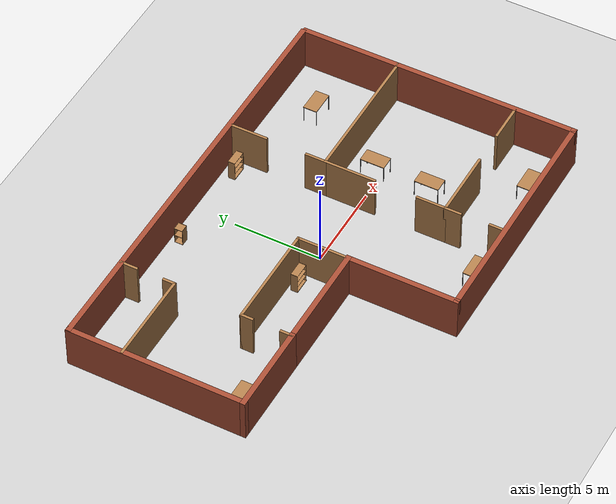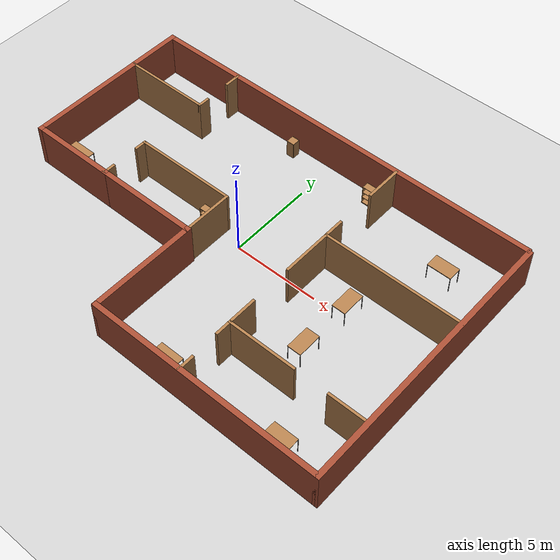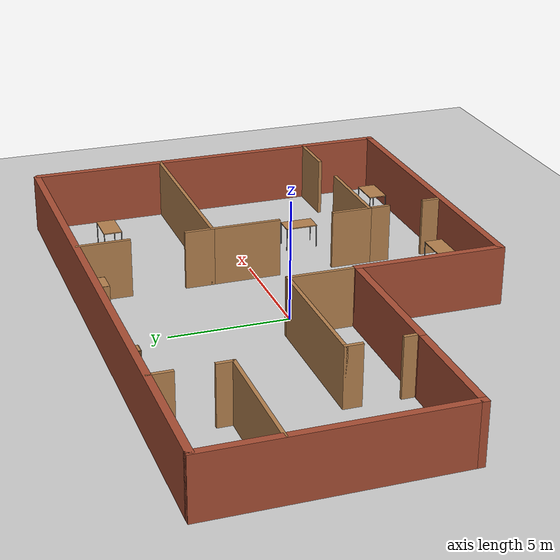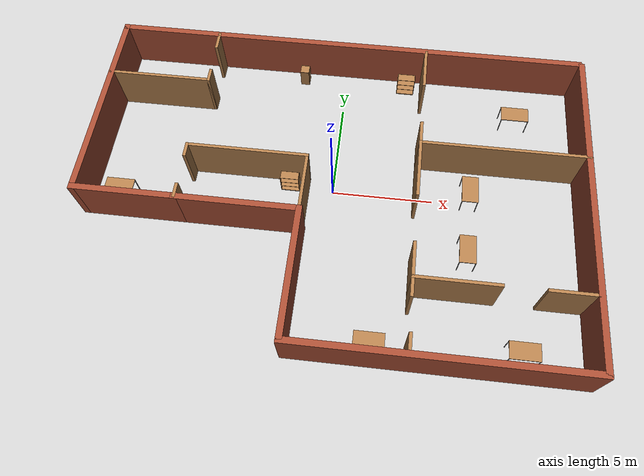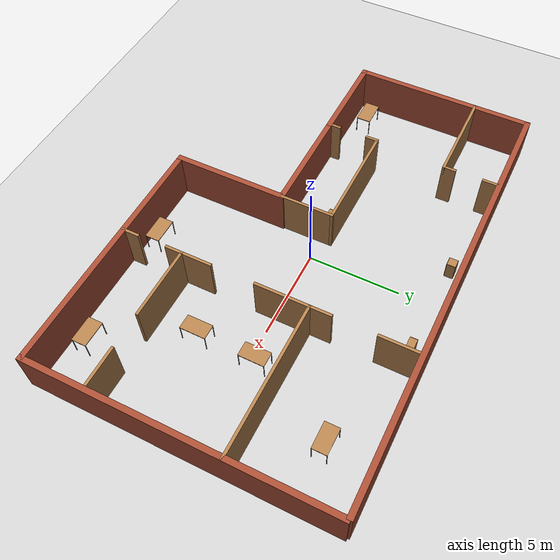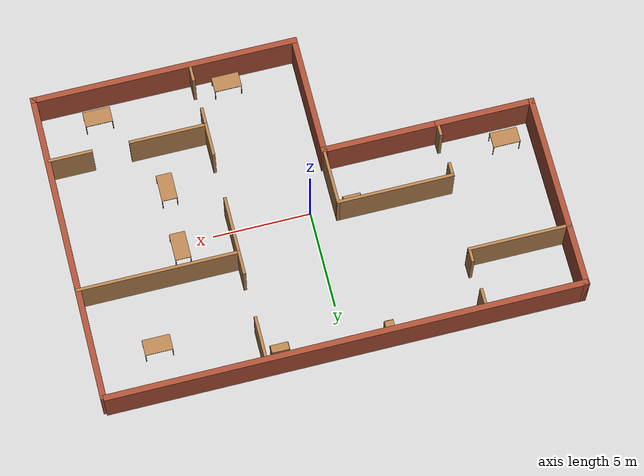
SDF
<sdf version="1.6">
 <world name="default">
  <model name="ground_plane">
   <static>1</static>
   <link name="link">
    <collision name="collision">
     <geometry><plane><normal>0 0 1</normal><size>100 100</size></plane></geometry>
     <surface><friction><ode><mu>100</mu><mu2>50</mu2></ode></friction></surface>
    </collision>
    <visual name="visual">
     <cast_shadows>0</cast_shadows>
     <geometry><plane><normal>0 0 1</normal><size>100 100</size></plane></geometry>
     <material>
      <script><uri>file://media/materials/scripts/gazebo.material</uri><name>Gazebo/Grey</name></script>
     </material>
    </visual>
   </link>
  </model>
  <model name="Building">
   <pose>0.09661 -0.39865 0 0 -0 0</pose>
   <link name="Wall_0">
    <collision name="Wall_0_Collision">
     <geometry><box><size>6.15 0.3 2.5</size></box></geometry>
     <pose>0 0 1.25 0 -0 0</pose>
    </collision>
    <visual name="Wall_0_Visual">
     <pose>0 0 1.25 0 -0 0</pose>
     <geometry><box><size>6.15 0.3 2.5</size></box></geometry>
     <material>
      <script><uri>file://media/materials/scripts/gazebo.material</uri><name>Gazebo/Bricks</name></script>
      <ambient>1 1 1 1</ambient>
     </material>
    </visual>
    <pose>-4.2905 -1.875 0 0 -0 0</pose>
   </link>
   <link name="Wall_1">
    <collision name="Wall_1_Collision">
     <geometry><box><size>3 0.15 2.5</size></box></geometry>
     <pose>0 0 1.25 0 -0 0</pose>
    </collision>
    <visual name="Wall_1_Visual">
     <pose>0 0 1.25 0 -0 0</pose>
     <geometry><box><size>3 0.15 2.5</size></box></geometry>
     <material>
      <script><uri>file://media/materials/scripts/gazebo.material</uri><name>Gazebo/Wood</name></script>
      <ambient>1 1 1 1</ambient>
     </material>
    </visual>
    <pose>-1.3655 -0.45 0 0 -0 1.5708</pose>
   </link>
   <link name="Wall_10">
    <collision name="Wall_10_Collision">
     <geometry><box><size>24.25 0.3 2.5</size></box></geometry>
     <pose>0 0 1.25 0 -0 0</pose>
    </collision>
    <visual name="Wall_10_Visual">
     <pose>0 0 1.25 0 -0 0</pose>
     <geometry><box><size>24.25 0.3 2.5</size></box></geometry>
     <material>
      <script><uri>file://media/materials/scripts/gazebo.material</uri><name>Gazebo/Bricks</name></script>
      <ambient>1 1 1 1</ambient>
     </material>
    </visual>
    <pose>-0.051365 7.975 0 0 -0 0</pose>
   </link>
   <link name="Wall_15">
    <collision name="Wall_15_Collision">
     <geometry><box><size>5.25 0.15 2.5</size></box></geometry>
     <pose>0 0 1.25 0 -0 0</pose>
    </collision>
    <visual name="Wall_15_Visual">
     <pose>0 0 1.25 0 -0 0</pose>
     <geometry><box><size>5.25 0.15 2.5</size></box></geometry>
     <material>
      <script><uri>file://media/materials/scripts/gazebo.material</uri><name>Gazebo/Wood</name></script>
      <ambient>1 1 1 1</ambient>
     </material>
    </visual>
    <pose>-9.54678 4.92232 0 0 -0 0</pose>
   </link>
   <link name="Wall_17">
    <collision name="Wall_17_Collision">
     <geometry><box><size>0.75 0.15 2.5</size></box></geometry>
     <pose>0 0 1.25 0 -0 0</pose>
    </collision>
    <visual name="Wall_17_Visual">
     <pose>0 0 1.25 0 -0 0</pose>
     <geometry><box><size>0.75 0.15 2.5</size></box></geometry>
     <material>
      <script><uri>file://media/materials/scripts/gazebo.material</uri><name>Gazebo/Wood</name></script>
      <ambient>1 1 1 1</ambient>
     </material>
    </visual>
    <pose>-6.99678 5.22232 0 0 -0 1.5708</pose>
   </link>
   <link name="Wall_2">
    <collision name="Wall_2_Collision">
     <geometry><box><size>6 0.15 2.5</size></box></geometry>
     <pose>0 0 1.25 0 -0 0</pose>
    </collision>
    <visual name="Wall_2_Visual">
     <pose>0 0 1.25 0 -0 0</pose>
     <geometry><box><size>6 0.15 2.5</size></box></geometry>
     <material>
      <script><uri>file://media/materials/scripts/gazebo.material</uri><name>Gazebo/Wood</name></script>
      <ambient>1 1 1 1</ambient>
     </material>
    </visual>
    <pose>-4.2905 0.975 0 0 -0 3.14159</pose>
   </link>
   <link name="Wall_20">
    <collision name="Wall_20_Collision">
     <geometry><box><size>1 0.15 2.5</size></box></geometry>
     <pose>0 0 1.25 0 -0 0</pose>
    </collision>
    <visual name="Wall_20_Visual">
     <pose>0 0 1.25 0 -0 0</pose>
     <geometry><box><size>1 0.15 2.5</size></box></geometry>
     <material>
      <script><uri>file://media/materials/scripts/gazebo.material</uri><name>Gazebo/Wood</name></script>
      <ambient>1 1 1 1</ambient>
     </material>
    </visual>
    <pose>-7.0138 7.53363 0 0 0 -1.5708</pose>
   </link>
   <link name="Wall_22">
    <collision name="Wall_22_Collision">
     <geometry><box><size>6.4 0.3 2.5</size></box></geometry>
     <pose>0 0 1.25 0 -0 0</pose>
    </collision>
    <visual name="Wall_22_Visual">
     <pose>0 0 1.25 0 -0 0</pose>
     <geometry><box><size>6.4 0.3 2.5</size></box></geometry>
     <material>
      <script><uri>file://media/materials/scripts/gazebo.material</uri><name>Gazebo/Bricks</name></script>
      <ambient>1 1 1 1</ambient>
     </material>
    </visual>
    <pose>-1.3655 -4.925 0 0 0 -1.5708</pose>
   </link>
   <link name="Wall_23">
    <collision name="Wall_23_Collision">
     <geometry><box><size>13.731 0.3 2.5</size></box></geometry>
     <pose>0 0 1.25 0 -0 0</pose>
    </collision>
    <visual name="Wall_23_Visual">
     <pose>0 0 1.25 0 -0 0</pose>
     <geometry><box><size>13.731 0.3 2.5</size></box></geometry>
     <material>
      <script><uri>file://media/materials/scripts/gazebo.material</uri><name>Gazebo/Bricks</name></script>
      <ambient>1 1 1 1</ambient>
     </material>
    </visual>
    <pose>5.35 -7.975 0 0 -0 0</pose>
   </link>
   <link name="Wall_24">
    <collision name="Wall_24_Collision">
     <geometry><box><size>16.15 0.3 2.5</size></box></geometry>
     <pose>0 0 1.25 0 -0 0</pose>
    </collision>
    <visual name="Wall_24_Visual">
     <pose>0 0 1.25 0 -0 0</pose>
     <geometry><box><size>16.15 0.3 2.5</size></box></geometry>
     <material>
      <script><uri>file://media/materials/scripts/gazebo.material</uri><name>Gazebo/Bricks</name></script>
      <ambient>1 1 1 1</ambient>
     </material>
    </visual>
    <pose>12.0655 -0.05 0 0 -0 1.5708</pose>
   </link>
   <link name="Wall_26">
    <collision name="Wall_26_Collision">
     <geometry><box><size>10.15 0.3 2.5</size></box></geometry>
     <pose>0 0 1.25 0 -0 0</pose>
    </collision>
    <visual name="Wall_26_Visual">
     <pose>0 0 1.25 0 -0 0</pose>
     <geometry><box><size>10.15 0.3 2.5</size></box></geometry>
     <material>
      <script><uri>file://media/materials/scripts/gazebo.material</uri><name>Gazebo/Bricks</name></script>
      <ambient>1 1 1 1</ambient>
     </material>
    </visual>
    <pose>-12.0655 3.05 0 0 -0 1.5708</pose>
   </link>
   <link name="Wall_29">
    <collision name="Wall_29_Collision">
     <geometry><box><size>2.25 0.15 2.5</size></box></geometry>
     <pose>0 0 1.25 0 -0 0</pose>
    </collision>
    <visual name="Wall_29_Visual">
     <pose>0 0 1.25 0 -0 0</pose>
     <geometry><box><size>2.25 0.15 2.5</size></box></geometry>
     <material>
      <script><uri>file://media/materials/scripts/gazebo.material</uri><name>Gazebo/Wood</name></script>
      <ambient>1 1 1 1</ambient>
     </material>
    </visual>
    <pose>4.00585 6.87362 0 0 0 -1.5708</pose>
   </link>
   <link name="Wall_3">
    <collision name="Wall_3_Collision">
     <geometry><box><size>0.75 0.15 2.5</size></box></geometry>
     <pose>0 0 1.25 0 -0 0</pose>
    </collision>
    <visual name="Wall_3_Visual">
     <pose>0 0 1.25 0 -0 0</pose>
     <geometry><box><size>0.75 0.15 2.5</size></box></geometry>
     <material>
      <script><uri>file://media/materials/scripts/gazebo.material</uri><name>Gazebo/Wood</name></script>
      <ambient>1 1 1 1</ambient>
     </material>
    </visual>
    <pose>-7.2155 0.675 0 0 0 -1.5708</pose>
   </link>
   <link name="Wall_34">
    <collision name="Wall_34_Collision">
     <geometry><box><size>1.25 0.15 2.5</size></box></geometry>
     <pose>0 0 1.25 0 -0 0</pose>
    </collision>
    <visual name="Wall_34_Visual">
     <pose>0 0 1.25 0 -0 0</pose>
     <geometry><box><size>1.25 0.15 2.5</size></box></geometry>
     <material>
      <script><uri>file://media/materials/scripts/gazebo.material</uri><name>Gazebo/Wood</name></script>
      <ambient>1 1 1 1</ambient>
     </material>
    </visual>
    <pose>3.99805 2.86928 0 0 0 -1.5708</pose>
   </link>
   <link name="Wall_35">
    <collision name="Wall_35_Collision">
     <geometry><box><size>8.25 0.15 2.5</size></box></geometry>
     <pose>0 0 1.25 0 -0 0</pose>
    </collision>
    <visual name="Wall_35_Visual">
     <pose>0 0 1.25 0 -0 0</pose>
     <geometry><box><size>8.25 0.15 2.5</size></box></geometry>
     <material>
      <script><uri>file://media/materials/scripts/gazebo.material</uri><name>Gazebo/Wood</name></script>
      <ambient>1 1 1 1</ambient>
     </material>
    </visual>
    <pose>8.04805 2.31928 0 0 -0 0</pose>
   </link>
   <link name="Wall_38">
    <collision name="Wall_38_Collision">
     <geometry><box><size>3 0.15 2.5</size></box></geometry>
     <pose>0 0 1.25 0 -0 0</pose>
    </collision>
    <visual name="Wall_38_Visual">
     <pose>0 0 1.25 0 -0 0</pose>
     <geometry><box><size>3 0.15 2.5</size></box></geometry>
     <material>
      <script><uri>file://media/materials/scripts/gazebo.material</uri><name>Gazebo/Wood</name></script>
      <ambient>1 1 1 1</ambient>
     </material>
    </visual>
    <pose>3.99805 0.894284 0 0 0 -1.5708</pose>
   </link>
   <link name="Wall_40">
    <collision name="Wall_40_Collision">
     <geometry><box><size>1.75 0.15 2.5</size></box></geometry>
     <pose>0 0 1.25 0 -0 0</pose>
    </collision>
    <visual name="Wall_40_Visual">
     <pose>0 0 1.25 0 -0 0</pose>
     <geometry><box><size>1.75 0.15 2.5</size></box></geometry>
     <material>
      <script><uri>file://media/materials/scripts/gazebo.material</uri><name>Gazebo/Wood</name></script>
      <ambient>1 1 1 1</ambient>
     </material>
    </visual>
    <pose>4.00066 -3.81284 0 0 0 -1.5708</pose>
   </link>
   <link name="Wall_44">
    <collision name="Wall_44_Collision">
     <geometry><box><size>1 0.15 2.5</size></box></geometry>
     <pose>0 0 1.25 0 -0 0</pose>
    </collision>
    <visual name="Wall_44_Visual">
     <pose>0 0 1.25 0 -0 0</pose>
     <geometry><box><size>1 0.15 2.5</size></box></geometry>
     <material>
      <script><uri>file://media/materials/scripts/gazebo.material</uri><name>Gazebo/Wood</name></script>
      <ambient>1 1 1 1</ambient>
     </material>
    </visual>
    <pose>4.00066 -5.03784 0 0 0 -1.5708</pose>
   </link>
   <link name="Wall_46">
    <collision name="Wall_46_Collision">
     <geometry><box><size>1 0.15 2.5</size></box></geometry>
     <pose>0 0 1.25 0 -0 0</pose>
    </collision>
    <visual name="Wall_46_Visual">
     <pose>0 0 1.25 0 -0 0</pose>
     <geometry><box><size>1 0.15 2.5</size></box></geometry>
     <material>
      <script><uri>file://media/materials/scripts/gazebo.material</uri><name>Gazebo/Wood</name></script>
      <ambient>1 1 1 1</ambient>
     </material>
    </visual>
    <pose>4.04354 -7.56511 0 0 -0 1.5708</pose>
   </link>
   <link name="Wall_48">
    <collision name="Wall_48_Collision">
     <geometry><box><size>4 0.15 2.5</size></box></geometry>
     <pose>0 0 1.25 0 -0 0</pose>
    </collision>
    <visual name="Wall_48_Visual">
     <pose>0 0 1.25 0 -0 0</pose>
     <geometry><box><size>4 0.15 2.5</size></box></geometry>
     <material>
      <script><uri>file://media/materials/scripts/gazebo.material</uri><name>Gazebo/Wood</name></script>
      <ambient>1 1 1 1</ambient>
     </material>
    </visual>
    <pose>5.92566 -4.61284 0 0 -0 0</pose>
   </link>
   <link name="Wall_5">
    <collision name="Wall_5_Collision">
     <geometry><box><size>0.75 0.15 2.5</size></box></geometry>
     <pose>0 0 1.25 0 -0 0</pose>
    </collision>
    <visual name="Wall_5_Visual">
     <pose>0 0 1.25 0 -0 0</pose>
     <geometry><box><size>0.75 0.15 2.5</size></box></geometry>
     <material>
      <script><uri>file://media/materials/scripts/gazebo.material</uri><name>Gazebo/Wood</name></script>
      <ambient>1 1 1 1</ambient>
     </material>
    </visual>
    <pose>-7.2155 -1.575 0 0 -0 1.5708</pose>
   </link>
   <link name="Wall_50">
    <collision name="Wall_50_Collision">
     <geometry><box><size>2.25 0.15 2.5</size></box></geometry>
     <pose>0 0 1.25 0 -0 0</pose>
    </collision>
    <visual name="Wall_50_Visual">
     <pose>0 0 1.25 0 -0 0</pose>
     <geometry><box><size>2.25 0.15 2.5</size></box></geometry>
     <material>
      <script><uri>file://media/materials/scripts/gazebo.material</uri><name>Gazebo/Wood</name></script>
      <ambient>1 1 1 1</ambient>
     </material>
    </visual>
    <pose>10.9177 -4.61728 0 0 -0 0</pose>
   </link>
   <link name="Wall_7">
    <collision name="Wall_7_Collision">
     <geometry><box><size>5.15 0.3 2.5</size></box></geometry>
     <pose>0 0 1.25 0 -0 0</pose>
    </collision>
    <visual name="Wall_7_Visual">
     <pose>0 0 1.25 0 -0 0</pose>
     <geometry><box><size>5.15 0.3 2.5</size></box></geometry>
     <material>
      <script><uri>file://media/materials/scripts/gazebo.material</uri><name>Gazebo/Bricks</name></script>
      <ambient>1 1 1 1</ambient>
     </material>
    </visual>
    <pose>-9.6405 -1.875 0 0 -0 3.14159</pose>
   </link>
   <static>1</static>
  </model>
  <model name="table_0">
   <static>0</static>
   <link name="link">
    <collision name="surface">
     <pose>0 0 1 0 -0 0</pose>
     <geometry><box><size>1.5 0.8 0.03</size></box></geometry>
     <surface><friction><ode><mu>0.6</mu><mu2>0.6</mu2></ode></friction></surface>
    </collision>
    <visual name="visual1">
     <pose>0 0 1 0 -0 0</pose>
     <geometry><box><size>1.4 0.8 0.04</size></box></geometry>
     <material>
      <script><uri>file://media/materials/scripts/gazebo.material</uri><name>Gazebo/Wood</name></script>
     </material>
    </visual>
    <collision name="front_left_leg">
     <pose>0.68 0.38 0.5 0 -0 0</pose>
     <geometry><cylinder><radius>0.02</radius><length>1</length></cylinder></geometry>
    </collision>
    <visual name="front_left_leg">
     <pose>0.68 0.38 0.5 0 -0 0</pose>
     <geometry><cylinder><radius>0.02</radius><length>1</length></cylinder></geometry>
     <material>
      <script><uri>file://media/materials/scripts/gazebo.material</uri><name>Gazebo/Grey</name></script>
     </material>
    </visual>
    <collision name="front_right_leg">
     <pose>0.68 -0.38 0.5 0 -0 0</pose>
     <geometry><cylinder><radius>0.02</radius><length>1</length></cylinder></geometry>
    </collision>
    <visual name="front_right_leg">
     <pose>0.68 -0.38 0.5 0 -0 0</pose>
     <geometry><cylinder><radius>0.02</radius><length>1</length></cylinder></geometry>
     <material>
      <script><uri>file://media/materials/scripts/gazebo.material</uri><name>Gazebo/Grey</name></script>
     </material>
    </visual>
    <collision name="back_right_leg">
     <pose>-0.68 -0.38 0.5 0 -0 0</pose>
     <geometry><cylinder><radius>0.02</radius><length>1</length></cylinder></geometry>
    </collision>
    <visual name="back_right_leg">
     <pose>-0.68 -0.38 0.5 0 -0 0</pose>
     <geometry><cylinder><radius>0.02</radius><length>1</length></cylinder></geometry>
     <material>
      <script><uri>file://media/materials/scripts/gazebo.material</uri><name>Gazebo/Grey</name></script>
     </material>
    </visual>
    <collision name="back_left_leg">
     <pose>-0.68 0.38 0.5 0 -0 0</pose>
     <geometry><cylinder><radius>0.02</radius><length>1</length></cylinder></geometry>
    </collision>
    <visual name="back_left_leg">
     <pose>-0.68 0.38 0.5 0 -0 0</pose>
     <geometry><cylinder><radius>0.02</radius><length>1</length></cylinder></geometry>
     <material>
      <script><uri>file://media/materials/scripts/gazebo.material</uri><name>Gazebo/Grey</name></script>
     </material>
    </visual>
    <inertial>
     <inertia><ixx>1</ixx><ixy>0</ixy><ixz>0</ixz><iyy>1</iyy><iyz>0</iyz><izz>1</izz></inertia>
     <mass>1</mass>
    </inertial>
   </link>
   <pose>9.00297 5.12195 -9e-06 0 -1e-06 0</pose>
  </model>
  <model name="table_1">
   <static>0</static>
   <link name="link">
    <collision name="surface">
     <pose>0 0 1 0 -0 0</pose>
     <geometry><box><size>1.5 0.8 0.03</size></box></geometry>
     <surface><friction><ode><mu>0.6</mu><mu2>0.6</mu2></ode></friction></surface>
    </collision>
    <visual name="visual1">
     <pose>0 0 1 0 -0 0</pose>
     <geometry><box><size>1.4 0.8 0.04</size></box></geometry>
     <material>
      <script><uri>file://media/materials/scripts/gazebo.material</uri><name>Gazebo/Wood</name></script>
     </material>
    </visual>
    <collision name="front_left_leg">
     <pose>0.68 0.38 0.5 0 -0 0</pose>
     <geometry><cylinder><radius>0.02</radius><length>1</length></cylinder></geometry>
    </collision>
    <visual name="front_left_leg">
     <pose>0.68 0.38 0.5 0 -0 0</pose>
     <geometry><cylinder><radius>0.02</radius><length>1</length></cylinder></geometry>
     <material>
      <script><uri>file://media/materials/scripts/gazebo.material</uri><name>Gazebo/Grey</name></script>
     </material>
    </visual>
    <collision name="front_right_leg">
     <pose>0.68 -0.38 0.5 0 -0 0</pose>
     <geometry><cylinder><radius>0.02</radius><length>1</length></cylinder></geometry>
    </collision>
    <visual name="front_right_leg">
     <pose>0.68 -0.38 0.5 0 -0 0</pose>
     <geometry><cylinder><radius>0.02</radius><length>1</length></cylinder></geometry>
     <material>
      <script><uri>file://media/materials/scripts/gazebo.material</uri><name>Gazebo/Grey</name></script>
     </material>
    </visual>
    <collision name="back_right_leg">
     <pose>-0.68 -0.38 0.5 0 -0 0</pose>
     <geometry><cylinder><radius>0.02</radius><length>1</length></cylinder></geometry>
    </collision>
    <visual name="back_right_leg">
     <pose>-0.68 -0.38 0.5 0 -0 0</pose>
     <geometry><cylinder><radius>0.02</radius><length>1</length></cylinder></geometry>
     <material>
      <script><uri>file://media/materials/scripts/gazebo.material</uri><name>Gazebo/Grey</name></script>
     </material>
    </visual>
    <collision name="back_left_leg">
     <pose>-0.68 0.38 0.5 0 -0 0</pose>
     <geometry><cylinder><radius>0.02</radius><length>1</length></cylinder></geometry>
    </collision>
    <visual name="back_left_leg">
     <pose>-0.68 0.38 0.5 0 -0 0</pose>
     <geometry><cylinder><radius>0.02</radius><length>1</length></cylinder></geometry>
     <material>
      <script><uri>file://media/materials/scripts/gazebo.material</uri><name>Gazebo/Grey</name></script>
     </material>
    </visual>
    <inertial>
     <inertia><ixx>1</ixx><ixy>0</ixy><ixz>0</ixz><iyy>1</iyy><iyz>0</iyz><izz>1</izz></inertia>
     <mass>1</mass>
    </inertial>
   </link>
   <pose>6.75225 0.384972 -8e-06 0 -0 1.57157</pose>
  </model>
  <model name="table_1_clone">
   <static>0</static>
   <link name="link">
    <collision name="surface">
     <pose>0 0 1 0 -0 0</pose>
     <geometry><box><size>1.5 0.8 0.03</size></box></geometry>
     <surface><friction><ode><mu>0.6</mu><mu2>0.6</mu2></ode></friction></surface>
    </collision>
    <visual name="visual1">
     <pose>0 0 1 0 -0 0</pose>
     <geometry><box><size>1.4 0.8 0.04</size></box></geometry>
     <material>
      <script><uri>file://media/materials/scripts/gazebo.material</uri><name>Gazebo/Wood</name></script>
     </material>
    </visual>
    <collision name="front_left_leg">
     <pose>0.68 0.38 0.5 0 -0 0</pose>
     <geometry><cylinder><radius>0.02</radius><length>1</length></cylinder></geometry>
    </collision>
    <visual name="front_left_leg">
     <pose>0.68 0.38 0.5 0 -0 0</pose>
     <geometry><cylinder><radius>0.02</radius><length>1</length></cylinder></geometry>
     <material>
      <script><uri>file://media/materials/scripts/gazebo.material</uri><name>Gazebo/Grey</name></script>
     </material>
    </visual>
    <collision name="front_right_leg">
     <pose>0.68 -0.38 0.5 0 -0 0</pose>
     <geometry><cylinder><radius>0.02</radius><length>1</length></cylinder></geometry>
    </collision>
    <visual name="front_right_leg">
     <pose>0.68 -0.38 0.5 0 -0 0</pose>
     <geometry><cylinder><radius>0.02</radius><length>1</length></cylinder></geometry>
     <material>
      <script><uri>file://media/materials/scripts/gazebo.material</uri><name>Gazebo/Grey</name></script>
     </material>
    </visual>
    <collision name="back_right_leg">
     <pose>-0.68 -0.38 0.5 0 -0 0</pose>
     <geometry><cylinder><radius>0.02</radius><length>1</length></cylinder></geometry>
    </collision>
    <visual name="back_right_leg">
     <pose>-0.68 -0.38 0.5 0 -0 0</pose>
     <geometry><cylinder><radius>0.02</radius><length>1</length></cylinder></geometry>
     <material>
      <script><uri>file://media/materials/scripts/gazebo.material</uri><name>Gazebo/Grey</name></script>
     </material>
    </visual>
    <collision name="back_left_leg">
     <pose>-0.68 0.38 0.5 0 -0 0</pose>
     <geometry><cylinder><radius>0.02</radius><length>1</length></cylinder></geometry>
    </collision>
    <visual name="back_left_leg">
     <pose>-0.68 0.38 0.5 0 -0 0</pose>
     <geometry><cylinder><radius>0.02</radius><length>1</length></cylinder></geometry>
     <material>
      <script><uri>file://media/materials/scripts/gazebo.material</uri><name>Gazebo/Grey</name></script>
     </material>
    </visual>
    <inertial>
     <inertia><ixx>1</ixx><ixy>0</ixy><ixz>0</ixz><iyy>1</iyy><iyz>0</iyz><izz>1</izz></inertia>
     <mass>1</mass>
    </inertial>
   </link>
   <pose>6.69104 -2.81314 -8e-06 0 -0 1.57157</pose>
  </model>
  <model name="table_2">
   <static>0</static>
   <link name="link">
    <collision name="surface">
     <pose>0 0 1 0 -0 0</pose>
     <geometry><box><size>1.5 0.8 0.03</size></box></geometry>
     <surface><friction><ode><mu>0.6</mu><mu2>0.6</mu2></ode></friction></surface>
    </collision>
    <visual name="visual1">
     <pose>0 0 1 0 -0 0</pose>
     <geometry><box><size>1.4 0.8 0.04</size></box></geometry>
     <material>
      <script><uri>file://media/materials/scripts/gazebo.material</uri><name>Gazebo/Wood</name></script>
     </material>
    </visual>
    <collision name="front_left_leg">
     <pose>0.68 0.38 0.5 0 -0 0</pose>
     <geometry><cylinder><radius>0.02</radius><length>1</length></cylinder></geometry>
    </collision>
    <visual name="front_left_leg">
     <pose>0.68 0.38 0.5 0 -0 0</pose>
     <geometry><cylinder><radius>0.02</radius><length>1</length></cylinder></geometry>
     <material>
      <script><uri>file://media/materials/scripts/gazebo.material</uri><name>Gazebo/Grey</name></script>
     </material>
    </visual>
    <collision name="front_right_leg">
     <pose>0.68 -0.38 0.5 0 -0 0</pose>
     <geometry><cylinder><radius>0.02</radius><length>1</length></cylinder></geometry>
    </collision>
    <visual name="front_right_leg">
     <pose>0.68 -0.38 0.5 0 -0 0</pose>
     <geometry><cylinder><radius>0.02</radius><length>1</length></cylinder></geometry>
     <material>
      <script><uri>file://media/materials/scripts/gazebo.material</uri><name>Gazebo/Grey</name></script>
     </material>
    </visual>
    <collision name="back_right_leg">
     <pose>-0.68 -0.38 0.5 0 -0 0</pose>
     <geometry><cylinder><radius>0.02</radius><length>1</length></cylinder></geometry>
    </collision>
    <visual name="back_right_leg">
     <pose>-0.68 -0.38 0.5 0 -0 0</pose>
     <geometry><cylinder><radius>0.02</radius><length>1</length></cylinder></geometry>
     <material>
      <script><uri>file://media/materials/scripts/gazebo.material</uri><name>Gazebo/Grey</name></script>
     </material>
    </visual>
    <collision name="back_left_leg">
     <pose>-0.68 0.38 0.5 0 -0 0</pose>
     <geometry><cylinder><radius>0.02</radius><length>1</length></cylinder></geometry>
    </collision>
    <visual name="back_left_leg">
     <pose>-0.68 0.38 0.5 0 -0 0</pose>
     <geometry><cylinder><radius>0.02</radius><length>1</length></cylinder></geometry>
     <material>
      <script><uri>file://media/materials/scripts/gazebo.material</uri><name>Gazebo/Grey</name></script>
     </material>
    </visual>
    <inertial>
     <inertia><ixx>1</ixx><ixy>0</ixy><ixz>0</ixz><iyy>1</iyy><iyz>0</iyz><izz>1</izz></inertia>
     <mass>1</mass>
    </inertial>
   </link>
   <pose>9.20848 -7.33779 -9e-06 0 -1e-06 0</pose>
  </model>
  <model name="bookshelf">
   <static>1</static>
   <link name="link">
    <inertial><mass>1</mass></inertial>
    <collision name="back">
     <pose>0 0.005 0.6 0 -0 0</pose>
     <geometry><box><size>0.9 0.01 1.2</size></box></geometry>
    </collision>
    <visual name="visual1">
     <pose>0 0.005 0.6 0 -0 0</pose>
     <geometry><box><size>0.9 0.01 1.2</size></box></geometry>
     <material>
      <script><uri>file://media/materials/scripts/gazebo.material</uri><name>Gazebo/Wood</name></script>
     </material>
    </visual>
    <collision name="left_side">
     <pose>0.45 -0.195 0.6 0 -0 0</pose>
     <geometry><box><size>0.02 0.4 1.2</size></box></geometry>
    </collision>
    <visual name="visual2">
     <pose>0.45 -0.195 0.6 0 -0 0</pose>
     <geometry><box><size>0.02 0.4 1.2</size></box></geometry>
     <material>
      <script><uri>file://media/materials/scripts/gazebo.material</uri><name>Gazebo/Wood</name></script>
     </material>
    </visual>
    <collision name="right_side">
     <pose>-0.45 -0.195 0.6 0 -0 0</pose>
     <geometry><box><size>0.02 0.4 1.2</size></box></geometry>
    </collision>
    <visual name="visual3">
     <pose>-0.45 -0.195 0.6 0 -0 0</pose>
     <geometry><box><size>0.02 0.4 1.2</size></box></geometry>
     <material>
      <script><uri>file://media/materials/scripts/gazebo.material</uri><name>Gazebo/Wood</name></script>
     </material>
    </visual>
    <collision name="bottom">
     <pose>0 -0.195 0.03 0 -0 0</pose>
     <geometry><box><size>0.88 0.4 0.06</size></box></geometry>
    </collision>
    <visual name="visual4">
     <pose>0 -0.195 0.03 0 -0 0</pose>
     <geometry><box><size>0.88 0.4 0.06</size></box></geometry>
     <material>
      <script><uri>file://media/materials/scripts/gazebo.material</uri><name>Gazebo/Wood</name></script>
     </material>
    </visual>
    <collision name="top">
     <pose>0 -0.195 1.19 0 -0 0</pose>
     <geometry><box><size>0.88 0.4 0.02</size></box></geometry>
    </collision>
    <visual name="visual5">
     <pose>0 -0.195 1.19 0 -0 0</pose>
     <geometry><box><size>0.88 0.4 0.02</size></box></geometry>
     <material>
      <script><uri>file://media/materials/scripts/gazebo.material</uri><name>Gazebo/Wood</name></script>
     </material>
    </visual>
    <collision name="low_shelf">
     <pose>0 -0.195 0.43 0 -0 0</pose>
     <geometry><box><size>0.88 0.4 0.02</size></box></geometry>
    </collision>
    <visual name="visual6">
     <pose>0 -0.195 0.43 0 -0 0</pose>
     <geometry><box><size>0.88 0.4 0.02</size></box></geometry>
     <material>
      <script><uri>file://media/materials/scripts/gazebo.material</uri><name>Gazebo/Wood</name></script>
     </material>
    </visual>
    <collision name="high_shelf">
     <pose>0 -0.195 0.8 0 -0 0</pose>
     <geometry><box><size>0.88 0.4 0.02</size></box></geometry>
    </collision>
    <visual name="visual7">
     <pose>0 -0.195 0.8 0 -0 0</pose>
     <geometry><box><size>0.88 0.4 0.02</size></box></geometry>
     <material>
      <script><uri>file://media/materials/scripts/gazebo.material</uri><name>Gazebo/Wood</name></script>
     </material>
    </visual>
   </link>
   <pose>3.2343 6.96181 0 0 -0 0</pose>
  </model>
  <model name="cabinet">
   <static>1</static>
   <link name="cabinet_bottom_plate">
    <inertial>
     <pose>0 0 -1 0 -0 0</pose>
     <inertia><ixx>2.05</ixx><ixy>0</ixy><ixz>0</ixz><iyy>2.05</iyy><iyz>0</iyz><izz>2.05</izz></inertia>
     <mass>25</mass>
    </inertial>
    <collision name="cabinet_bottom_plate_geom">
     <pose>0 0 0.01 0 -0 0</pose>
     <geometry><box><size>0.45 0.45 0.02</size></box></geometry>
    </collision>
    <visual name="cabinet_bottom_plate_geom_visual">
     <pose>0 0 0.01 0 -0 0</pose>
     <geometry><box><size>0.45 0.45 0.02</size></box></geometry>
     <material>
      <script><uri>file://media/materials/scripts/gazebo.material</uri><name>Gazebo/Wood</name></script>
     </material>
    </visual>
    <collision name="cabinet_bottom_plate_geom_cabinet_back_plate">
     <pose>0.235 0 0.51 0 -0 0</pose>
     <geometry><box><size>0.02 0.45 1.02</size></box></geometry>
    </collision>
    <visual name="cabinet_bottom_plate_geom_cabinet_back_plate_visual">
     <pose>0.235 0 0.51 0 -0 0</pose>
     <geometry><box><size>0.02 0.45 1.02</size></box></geometry>
     <material>
      <script><uri>file://media/materials/scripts/gazebo.material</uri><name>Gazebo/Wood</name></script>
     </material>
    </visual>
    <collision name="cabinet_bottom_plate_geom_cabinet_left_plate">
     <pose>0 0.235 0.51 0 -0 0</pose>
     <geometry><box><size>0.45 0.02 1.02</size></box></geometry>
    </collision>
    <visual name="cabinet_bottom_plate_geom_cabinet_left_plate_visual">
     <pose>0 0.235 0.51 0 -0 0</pose>
     <geometry><box><size>0.45 0.02 1.02</size></box></geometry>
     <material>
      <script><uri>file://media/materials/scripts/gazebo.material</uri><name>Gazebo/Wood</name></script>
     </material>
    </visual>
    <collision name="cabinet_bottom_plate_geom_cabinet_middle_plate">
     <pose>0 0 0.51 0 -0 0</pose>
     <geometry><box><size>0.45 0.45 0.02</size></box></geometry>
    </collision>
    <visual name="cabinet_bottom_plate_geom_cabinet_middle_plate_visual">
     <pose>0 0 0.51 0 -0 0</pose>
     <geometry><box><size>0.45 0.45 0.02</size></box></geometry>
     <material>
      <script><uri>file://media/materials/scripts/gazebo.material</uri><name>Gazebo/Wood</name></script>
     </material>
    </visual>
    <collision name="cabinet_bottom_plate_geom_cabinet_right_plate">
     <pose>0 -0.235 0.51 0 -0 0</pose>
     <geometry><box><size>0.45 0.02 1.02</size></box></geometry>
    </collision>
    <visual name="cabinet_bottom_plate_geom_cabinet_right_plate_visual">
     <pose>0 -0.235 0.51 0 -0 0</pose>
     <geometry><box><size>0.45 0.02 1.02</size></box></geometry>
     <material>
      <script><uri>file://media/materials/scripts/gazebo.material</uri><name>Gazebo/Wood</name></script>
     </material>
    </visual>
    <collision name="cabinet_bottom_plate_geom_cabinet_top_plate">
     <pose>0 0 1.01 0 -0 0</pose>
     <geometry><box><size>0.45 0.45 0.02</size></box></geometry>
    </collision>
    <visual name="cabinet_bottom_plate_geom_cabinet_top_plate_visual">
     <pose>0 0 1.01 0 -0 0</pose>
     <geometry><box><size>0.45 0.45 0.02</size></box></geometry>
     <material>
      <script><uri>file://media/materials/scripts/gazebo.material</uri><name>Gazebo/Wood</name></script>
     </material>
    </visual>
   </link>
   <pose>-2.2892 6.90487 0 0 -0 0</pose>
  </model>
  <model name="bookshelf_0">
   <static>1</static>
   <link name="link">
    <inertial><mass>1</mass></inertial>
    <collision name="back">
     <pose>0 0.005 0.6 0 -0 0</pose>
     <geometry><box><size>0.9 0.01 1.2</size></box></geometry>
    </collision>
    <visual name="visual1">
     <pose>0 0.005 0.6 0 -0 0</pose>
     <geometry><box><size>0.9 0.01 1.2</size></box></geometry>
     <material>
      <script><uri>file://media/materials/scripts/gazebo.material</uri><name>Gazebo/Wood</name></script>
     </material>
    </visual>
    <collision name="left_side">
     <pose>0.45 -0.195 0.6 0 -0 0</pose>
     <geometry><box><size>0.02 0.4 1.2</size></box></geometry>
    </collision>
    <visual name="visual2">
     <pose>0.45 -0.195 0.6 0 -0 0</pose>
     <geometry><box><size>0.02 0.4 1.2</size></box></geometry>
     <material>
      <script><uri>file://media/materials/scripts/gazebo.material</uri><name>Gazebo/Wood</name></script>
     </material>
    </visual>
    <collision name="right_side">
     <pose>-0.45 -0.195 0.6 0 -0 0</pose>
     <geometry><box><size>0.02 0.4 1.2</size></box></geometry>
    </collision>
    <visual name="visual3">
     <pose>-0.45 -0.195 0.6 0 -0 0</pose>
     <geometry><box><size>0.02 0.4 1.2</size></box></geometry>
     <material>
      <script><uri>file://media/materials/scripts/gazebo.material</uri><name>Gazebo/Wood</name></script>
     </material>
    </visual>
    <collision name="bottom">
     <pose>0 -0.195 0.03 0 -0 0</pose>
     <geometry><box><size>0.88 0.4 0.06</size></box></geometry>
    </collision>
    <visual name="visual4">
     <pose>0 -0.195 0.03 0 -0 0</pose>
     <geometry><box><size>0.88 0.4 0.06</size></box></geometry>
     <material>
      <script><uri>file://media/materials/scripts/gazebo.material</uri><name>Gazebo/Wood</name></script>
     </material>
    </visual>
    <collision name="top">
     <pose>0 -0.195 1.19 0 -0 0</pose>
     <geometry><box><size>0.88 0.4 0.02</size></box></geometry>
    </collision>
    <visual name="visual5">
     <pose>0 -0.195 1.19 0 -0 0</pose>
     <geometry><box><size>0.88 0.4 0.02</size></box></geometry>
     <material>
      <script><uri>file://media/materials/scripts/gazebo.material</uri><name>Gazebo/Wood</name></script>
     </material>
    </visual>
    <collision name="low_shelf">
     <pose>0 -0.195 0.43 0 -0 0</pose>
     <geometry><box><size>0.88 0.4 0.02</size></box></geometry>
    </collision>
    <visual name="visual6">
     <pose>0 -0.195 0.43 0 -0 0</pose>
     <geometry><box><size>0.88 0.4 0.02</size></box></geometry>
     <material>
      <script><uri>file://media/materials/scripts/gazebo.material</uri><name>Gazebo/Wood</name></script>
     </material>
    </visual>
    <collision name="high_shelf">
     <pose>0 -0.195 0.8 0 -0 0</pose>
     <geometry><box><size>0.88 0.4 0.02</size></box></geometry>
    </collision>
    <visual name="visual7">
     <pose>0 -0.195 0.8 0 -0 0</pose>
     <geometry><box><size>0.88 0.4 0.02</size></box></geometry>
     <material>
      <script><uri>file://media/materials/scripts/gazebo.material</uri><name>Gazebo/Wood</name></script>
     </material>
    </visual>
   </link>
   <pose>-2.13555 0.296318 0 0 -0 0</pose>
  </model>
  <model name="table_3">
   <static>0</static>
   <link name="link">
    <collision name="surface">
     <pose>0 0 1 0 -0 0</pose>
     <geometry><box><size>1.5 0.8 0.03</size></box></geometry>
     <surface><friction><ode><mu>0.6</mu><mu2>0.6</mu2></ode></friction></surface>
    </collision>
    <visual name="visual1">
     <pose>0 0 1 0 -0 0</pose>
     <geometry><box><size>1.4 0.8 0.04</size></box></geometry>
     <material>
      <script><uri>file://media/materials/scripts/gazebo.material</uri><name>Gazebo/Wood</name></script>
     </material>
    </visual>
    <collision name="front_left_leg">
     <pose>0.68 0.38 0.5 0 -0 0</pose>
     <geometry><cylinder><radius>0.02</radius><length>1</length></cylinder></geometry>
    </collision>
    <visual name="front_left_leg">
     <pose>0.68 0.38 0.5 0 -0 0</pose>
     <geometry><cylinder><radius>0.02</radius><length>1</length></cylinder></geometry>
     <material>
      <script><uri>file://media/materials/scripts/gazebo.material</uri><name>Gazebo/Grey</name></script>
     </material>
    </visual>
    <collision name="front_right_leg">
     <pose>0.68 -0.38 0.5 0 -0 0</pose>
     <geometry><cylinder><radius>0.02</radius><length>1</length></cylinder></geometry>
    </collision>
    <visual name="front_right_leg">
     <pose>0.68 -0.38 0.5 0 -0 0</pose>
     <geometry><cylinder><radius>0.02</radius><length>1</length></cylinder></geometry>
     <material>
      <script><uri>file://media/materials/scripts/gazebo.material</uri><name>Gazebo/Grey</name></script>
     </material>
    </visual>
    <collision name="back_right_leg">
     <pose>-0.68 -0.38 0.5 0 -0 0</pose>
     <geometry><cylinder><radius>0.02</radius><length>1</length></cylinder></geometry>
    </collision>
    <visual name="back_right_leg">
     <pose>-0.68 -0.38 0.5 0 -0 0</pose>
     <geometry><cylinder><radius>0.02</radius><length>1</length></cylinder></geometry>
     <material>
      <script><uri>file://media/materials/scripts/gazebo.material</uri><name>Gazebo/Grey</name></script>
     </material>
    </visual>
    <collision name="back_left_leg">
     <pose>-0.68 0.38 0.5 0 -0 0</pose>
     <geometry><cylinder><radius>0.02</radius><length>1</length></cylinder></geometry>
    </collision>
    <visual name="back_left_leg">
     <pose>-0.68 0.38 0.5 0 -0 0</pose>
     <geometry><cylinder><radius>0.02</radius><length>1</length></cylinder></geometry>
     <material>
      <script><uri>file://media/materials/scripts/gazebo.material</uri><name>Gazebo/Grey</name></script>
     </material>
    </visual>
    <inertial>
     <inertia><ixx>1</ixx><ixy>0</ixy><ixz>0</ixz><iyy>1</iyy><iyz>0</iyz><izz>1</izz></inertia>
     <mass>1</mass>
    </inertial>
   </link>
   <pose>-10.4141 -1.26357 -1e-06 0 1e-06 0</pose>
  </model>
  <model name="table_4">
   <static>0</static>
   <link name="link">
    <collision name="surface">
     <pose>0 0 1 0 -0 0</pose>
     <geometry><box><size>1.5 0.8 0.03</size></box></geometry>
     <surface><friction><ode><mu>0.6</mu><mu2>0.6</mu2></ode></friction></surface>
    </collision>
    <visual name="visual1">
     <pose>0 0 1 0 -0 0</pose>
     <geometry><box><size>1.4 0.8 0.04</size></box></geometry>
     <material>
      <script><uri>file://media/materials/scripts/gazebo.material</uri><name>Gazebo/Wood</name></script>
     </material>
    </visual>
    <collision name="front_left_leg">
     <pose>0.68 0.38 0.5 0 -0 0</pose>
     <geometry><cylinder><radius>0.02</radius><length>1</length></cylinder></geometry>
    </collision>
    <visual name="front_left_leg">
     <pose>0.68 0.38 0.5 0 -0 0</pose>
     <geometry><cylinder><radius>0.02</radius><length>1</length></cylinder></geometry>
     <material>
      <script><uri>file://media/materials/scripts/gazebo.material</uri><name>Gazebo/Grey</name></script>
     </material>
    </visual>
    <collision name="front_right_leg">
     <pose>0.68 -0.38 0.5 0 -0 0</pose>
     <geometry><cylinder><radius>0.02</radius><length>1</length></cylinder></geometry>
    </collision>
    <visual name="front_right_leg">
     <pose>0.68 -0.38 0.5 0 -0 0</pose>
     <geometry><cylinder><radius>0.02</radius><length>1</length></cylinder></geometry>
     <material>
      <script><uri>file://media/materials/scripts/gazebo.material</uri><name>Gazebo/Grey</name></script>
     </material>
    </visual>
    <collision name="back_right_leg">
     <pose>-0.68 -0.38 0.5 0 -0 0</pose>
     <geometry><cylinder><radius>0.02</radius><length>1</length></cylinder></geometry>
    </collision>
    <visual name="back_right_leg">
     <pose>-0.68 -0.38 0.5 0 -0 0</pose>
     <geometry><cylinder><radius>0.02</radius><length>1</length></cylinder></geometry>
     <material>
      <script><uri>file://media/materials/scripts/gazebo.material</uri><name>Gazebo/Grey</name></script>
     </material>
    </visual>
    <collision name="back_left_leg">
     <pose>-0.68 0.38 0.5 0 -0 0</pose>
     <geometry><cylinder><radius>0.02</radius><length>1</length></cylinder></geometry>
    </collision>
    <visual name="back_left_leg">
     <pose>-0.68 0.38 0.5 0 -0 0</pose>
     <geometry><cylinder><radius>0.02</radius><length>1</length></cylinder></geometry>
     <material>
      <script><uri>file://media/materials/scripts/gazebo.material</uri><name>Gazebo/Grey</name></script>
     </material>
    </visual>
    <inertial>
     <inertia><ixx>1</ixx><ixy>0</ixy><ixz>0</ixz><iyy>1</iyy><iyz>0</iyz><izz>1</izz></inertia>
     <mass>1</mass>
    </inertial>
   </link>
   <pose>2.4569 -7.6108 -9e-06 1e-06 -1e-06 0</pose>
  </model>
 </world>
</sdf>
